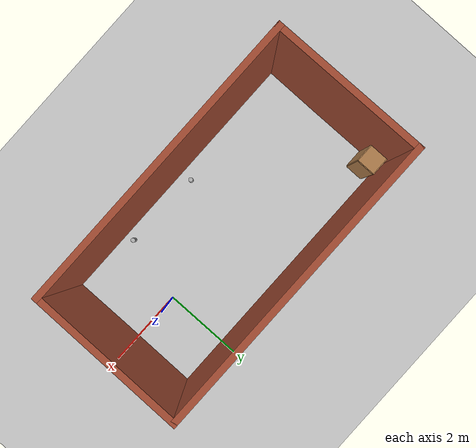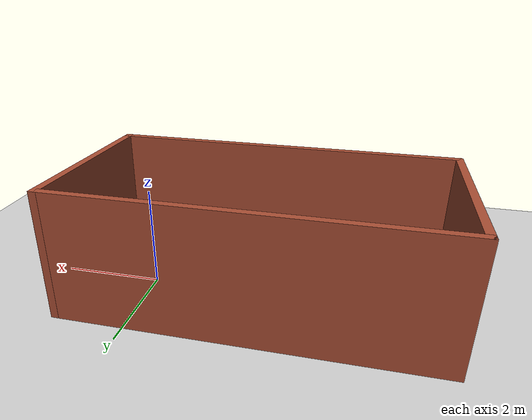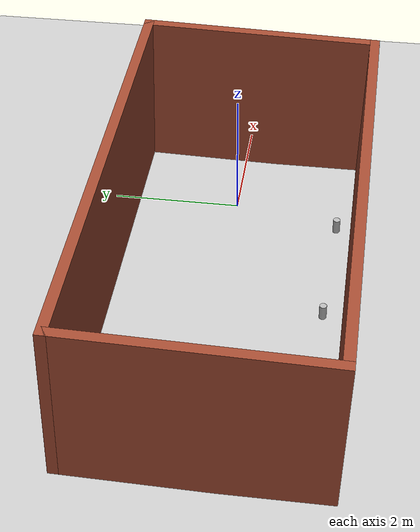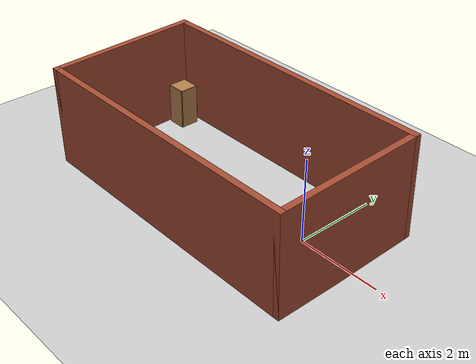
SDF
<sdf version="1.6">
 <world name="default">
  <light name="sun" type="directional">
   <pose>0 0 15 0 -0 0</pose>
   <diffuse>0.8 0.8 0.8 1</diffuse>
   <specular>0.2 0.2 0.2 1</specular>
   <attenuation>
    <range>1000</range>
    <constant>0.9</constant>
    <linear>0.01</linear>
    <quadratic>0.001</quadratic>
   </attenuation>
   <direction>-0.5 0.1 -0.9</direction>
  </light>
  <model name="ground_plane">
   <static>1</static>
   <link name="link">
    <collision name="collision">
     <geometry><plane><normal>0 0 1</normal><size>100 100</size></plane></geometry>
     <surface><friction><ode><mu>100</mu><mu2>50</mu2></ode></friction></surface>
    </collision>
    <visual name="visual">
     <transparency>1</transparency>
     <cast_shadows>0</cast_shadows>
     <geometry><plane><normal>0 0 1</normal><size>100 100</size></plane></geometry>
     <material>
      <script><uri>file://media/materials/scripts/gazebo.material</uri><name>Gazebo/Grey</name></script>
     </material>
    </visual>
   </link>
  </model>
  <gravity>0 0 -9.8</gravity>
  <magnetic_field>6e-06 2.3e-05 -4.2e-05</magnetic_field>
  <atmosphere type="adiabatic"/>
  <physics name="default_physics" default="0" type="ode">
   <max_step_size>0.001</max_step_size>
   <real_time_factor>1</real_time_factor>
   <real_time_update_rate>1000</real_time_update_rate>
  </physics>
  <scene><ambient>0.4 0.4 0.4 1</ambient><background>0.7 0.7 0.7 1</background><shadows>1</shadows></scene>
  <spherical_coordinates>
   <surface_model>EARTH_WGS84</surface_model>
   <latitude_deg>0</latitude_deg>
   <longitude_deg>0</longitude_deg>
   <elevation>0</elevation>
   <heading_deg>0</heading_deg>
  </spherical_coordinates>
  <model name="new_world">
   <pose>-2.23885 -0.138223 0 0.027233 -0 0</pose>
   <link name="Wall_10">
    <collision name="Wall_10_Collision">
     <geometry><box><size>7.25 0.15 2.5</size></box></geometry>
     <pose>0 0 1.25 0 -0 0</pose>
    </collision>
    <visual name="Wall_10_Visual">
     <pose>0 0 1.25 0 -0 0</pose>
     <geometry><box><size>7.25 0.15 2.5</size></box></geometry>
     <material>
      <script><uri>file://media/materials/scripts/gazebo.material</uri><name>Gazebo/Bricks</name></script>
      <ambient>1 1 1 1</ambient>
     </material>
     <meta><layer>0</layer></meta>
    </visual>
    <pose>0 1.8 0 0 -0 3.14159</pose>
   </link>
   <link name="Wall_7">
    <collision name="Wall_7_Collision">
     <geometry><box><size>3.75 0.15 2.5</size></box></geometry>
     <pose>0 0 1.25 0 -0 0</pose>
    </collision>
    <visual name="Wall_7_Visual">
     <pose>0 0 1.25 0 -0 0</pose>
     <geometry><box><size>3.75 0.15 2.5</size></box></geometry>
     <material>
      <script><uri>file://media/materials/scripts/gazebo.material</uri><name>Gazebo/Bricks</name></script>
      <ambient>1 1 1 1</ambient>
     </material>
     <meta><layer>0</layer></meta>
    </visual>
    <pose>-3.55 0 0 0 0 -1.5708</pose>
   </link>
   <link name="Wall_8">
    <collision name="Wall_8_Collision">
     <geometry><box><size>7.25 0.15 2.5</size></box></geometry>
     <pose>0 0 1.25 0 -0 0</pose>
    </collision>
    <visual name="Wall_8_Visual">
     <pose>0 0 1.25 0 -0 0</pose>
     <geometry><box><size>7.25 0.15 2.5</size></box></geometry>
     <material>
      <script><uri>file://media/materials/scripts/gazebo.material</uri><name>Gazebo/Bricks</name></script>
      <ambient>1 1 1 1</ambient>
     </material>
     <meta><layer>0</layer></meta>
    </visual>
    <pose>0 -1.8 0 0 -0 0</pose>
   </link>
   <link name="Wall_9">
    <collision name="Wall_9_Collision">
     <geometry><box><size>3.75 0.15 2.5</size></box></geometry>
     <pose>0 0 1.25 0 -0 0</pose>
    </collision>
    <visual name="Wall_9_Visual">
     <pose>0 0 1.25 0 -0 0</pose>
     <geometry><box><size>3.75 0.15 2.5</size></box></geometry>
     <material>
      <script><uri>file://media/materials/scripts/gazebo.material</uri><name>Gazebo/Bricks</name></script>
      <ambient>1 1 1 1</ambient>
     </material>
     <meta><layer>0</layer></meta>
    </visual>
    <pose>3.55 0 0 0 -0 1.5708</pose>
   </link>
   <static>1</static>
  </model>
  <model name="cabinet">
   <static>1</static>
   <link name="cabinet_bottom_plate">
    <inertial>
     <pose>0 0 -1 0 -0 0</pose>
     <inertia><ixx>2.05</ixx><ixy>0</ixy><ixz>0</ixz><iyy>2.05</iyy><iyz>0</iyz><izz>2.05</izz></inertia>
     <mass>25</mass>
    </inertial>
    <collision name="cabinet_bottom_plate_geom">
     <pose>0 0 0.01 0 -0 0</pose>
     <geometry><box><size>0.45 0.45 0.02</size></box></geometry>
    </collision>
    <visual name="cabinet_bottom_plate_geom_visual">
     <pose>0 0 0.01 0 -0 0</pose>
     <geometry><box><size>0.45 0.45 0.02</size></box></geometry>
     <material>
      <script><uri>file://media/materials/scripts/gazebo.material</uri><name>Gazebo/Wood</name></script>
     </material>
    </visual>
    <collision name="cabinet_bottom_plate_geom_cabinet_back_plate">
     <pose>0.235 0 0.51 0 -0 0</pose>
     <geometry><box><size>0.02 0.45 1.02</size></box></geometry>
    </collision>
    <visual name="cabinet_bottom_plate_geom_cabinet_back_plate_visual">
     <pose>0.235 0 0.51 0 -0 0</pose>
     <geometry><box><size>0.02 0.45 1.02</size></box></geometry>
     <material>
      <script><uri>file://media/materials/scripts/gazebo.material</uri><name>Gazebo/Wood</name></script>
     </material>
    </visual>
    <collision name="cabinet_bottom_plate_geom_cabinet_left_plate">
     <pose>0 0.235 0.51 0 -0 0</pose>
     <geometry><box><size>0.45 0.02 1.02</size></box></geometry>
    </collision>
    <visual name="cabinet_bottom_plate_geom_cabinet_left_plate_visual">
     <pose>0 0.235 0.51 0 -0 0</pose>
     <geometry><box><size>0.45 0.02 1.02</size></box></geometry>
     <material>
      <script><uri>file://media/materials/scripts/gazebo.material</uri><name>Gazebo/Wood</name></script>
     </material>
    </visual>
    <collision name="cabinet_bottom_plate_geom_cabinet_middle_plate">
     <pose>0 0 0.51 0 -0 0</pose>
     <geometry><box><size>0.45 0.45 0.02</size></box></geometry>
    </collision>
    <visual name="cabinet_bottom_plate_geom_cabinet_middle_plate_visual">
     <pose>0 0 0.51 0 -0 0</pose>
     <geometry><box><size>0.45 0.45 0.02</size></box></geometry>
     <material>
      <script><uri>file://media/materials/scripts/gazebo.material</uri><name>Gazebo/Wood</name></script>
     </material>
    </visual>
    <collision name="cabinet_bottom_plate_geom_cabinet_right_plate">
     <pose>0 -0.235 0.51 0 -0 0</pose>
     <geometry><box><size>0.45 0.02 1.02</size></box></geometry>
    </collision>
    <visual name="cabinet_bottom_plate_geom_cabinet_right_plate_visual">
     <pose>0 -0.235 0.51 0 -0 0</pose>
     <geometry><box><size>0.45 0.02 1.02</size></box></geometry>
     <material>
      <script><uri>file://media/materials/scripts/gazebo.material</uri><name>Gazebo/Wood</name></script>
     </material>
    </visual>
    <collision name="cabinet_bottom_plate_geom_cabinet_top_plate">
     <pose>0 0 1.01 0 -0 0</pose>
     <geometry><box><size>0.45 0.45 0.02</size></box></geometry>
    </collision>
    <visual name="cabinet_bottom_plate_geom_cabinet_top_plate_visual">
     <pose>0 0 1.01 0 -0 0</pose>
     <geometry><box><size>0.45 0.45 0.02</size></box></geometry>
     <material>
      <script><uri>file://media/materials/scripts/gazebo.material</uri><name>Gazebo/Wood</name></script>
     </material>
    </visual>
   </link>
   <pose>-5.47758 1.26591 0 0 -0 0</pose>
  </model>
  <model name="beer">
   <link name="link">
    <pose>0 0 0.115 0 -0 0</pose>
    <inertial>
     <mass>0.39</mass>
     <inertia><ixx>0.00058</ixx><ixy>0</ixy><ixz>0</ixz><iyy>0.00058</iyy><iyz>0</iyz><izz>0.00019</izz></inertia>
    </inertial>
    <collision name="collision">
     <geometry><cylinder><radius>0.055</radius><length>0.23</length></cylinder></geometry>
    </collision>
    <visual name="visual">
     <geometry><cylinder><radius>0.055</radius><length>0.23</length></cylinder></geometry>
     <material>
      <script>
       <uri>model://beer/materials/scripts</uri>
       <uri>model://beer/materials/textures</uri>
       <name>Beer/Diffuse</name>
      </script>
     </material>
    </visual>
   </link>
   <pose>-2.44613 -1.57065 -7e-06 -1e-06 -0 -8e-06</pose>
  </model>
  <model name="beer_0">
   <link name="link">
    <pose>0 0 0.115 0 -0 0</pose>
    <inertial>
     <mass>0.39</mass>
     <inertia><ixx>0.00058</ixx><ixy>0</ixy><ixz>0</ixz><iyy>0.00058</iyy><iyz>0</iyz><izz>0.00019</izz></inertia>
    </inertial>
    <collision name="collision">
     <geometry><cylinder><radius>0.055</radius><length>0.23</length></cylinder></geometry>
    </collision>
    <visual name="visual">
     <geometry><cylinder><radius>0.055</radius><length>0.23</length></cylinder></geometry>
     <material>
      <script>
       <uri>model://beer/materials/scripts</uri>
       <uri>model://beer/materials/textures</uri>
       <name>Beer/Diffuse</name>
      </script>
     </material>
    </visual>
   </link>
   <pose>-0.43636 -1.63875 -2e-06 1e-06 -0 -5e-06</pose>
  </model>
 </world>
</sdf>
